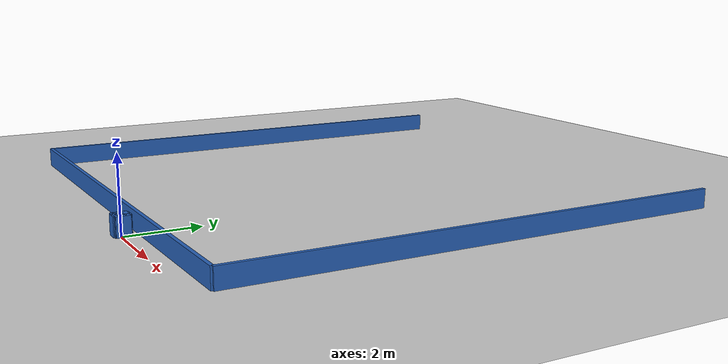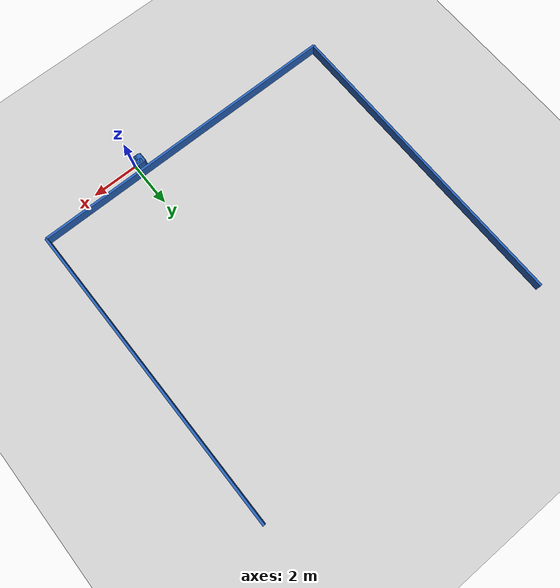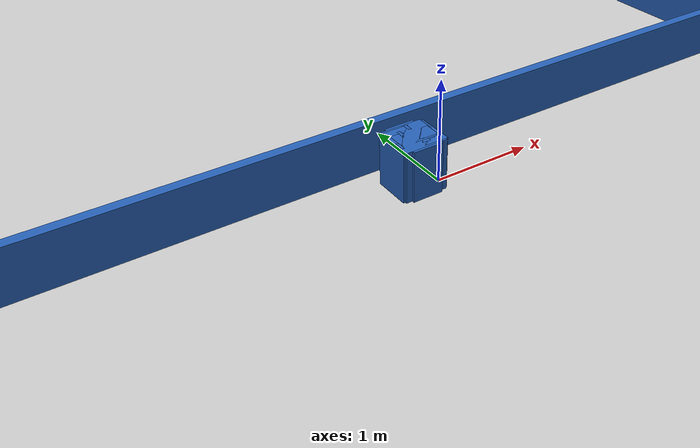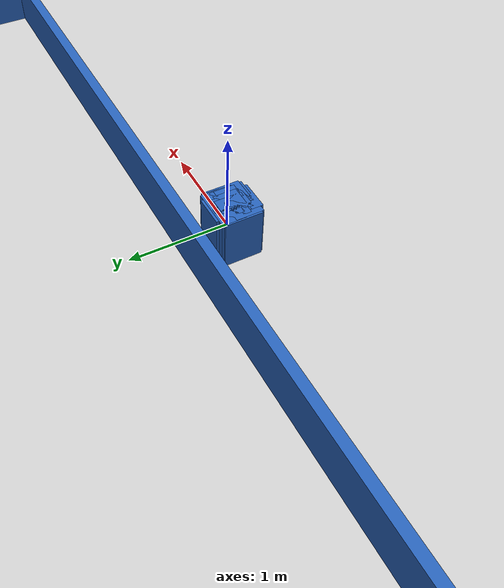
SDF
<?xml version="1.0" ?>
    <sdf version="1.5">
      <world name="default">
        <!-- A global light source -->
        <include>
          <uri>model://sun</uri>
        </include>
        <!-- A ground plane -->
        <include>
          <uri>model://ground_plane</uri>
        </include>

    <model name='libopen_space_final_T2B_125_67'>
      <static>1</static>
      <pose frame=''>-0.225000 0.075000 0.000000 0.000000 0.000000 0.000000</pose>
      <link name='link'>
        <inertial>
          <mass>1</mass>
          <inertia>
            <ixx>0.145833</ixx>
            <ixy>0</ixy>
            <ixz>0</ixz>
            <iyy>0.145833</iyy>
            <iyz>0</iyz>
            <izz>0.125</izz>
          </inertia>
        </inertial>
        <collision name='collision'>
          <geometry>
            <box>
              <size>0.46 0.37 1</size>
            </box>
          </geometry>
          <max_contacts>10</max_contacts>
          <surface>
            <contact>
              <ode/>
            </contact>
            <bounce/>
            <friction>
              <torsional>
                <ode/>
              </torsional>
              <ode/>
            </friction>
          </surface>
        </collision>
        <visual name='visual'>
          <geometry>
            <box>
              <size>0.46 0.37 1</size>
            </box>
          </geometry>
	    <material>
              <ambient>0.152000 0.379000 0.720000 1</ambient>
	      <diffuse>0.152000 0.379000 0.720000 1</diffuse>
          </material>
          <material>
            <script>
              <name>Gazebo/Grey</name>
              <uri>file://media/materials/scripts/gazebo.material</uri>
            </script>
          </material>
        </visual>
        <self_collide>0</self_collide>
        <kinematic>0</kinematic>
        <gravity>1</gravity>
      </link>
      <plugin name='libopen_space_final_T2B_125_67' filename='libopen_space_final_T2B_125_67.so'/>
    </model>

    <model name='libopen_space_final_T2B_125_59'>
      <static>1</static>
      <pose frame=''>-0.225000 0.075000 0.000000 0.000000 0.000000 0.000000</pose>
      <link name='link'>
        <inertial>
          <mass>1</mass>
          <inertia>
            <ixx>0.145833</ixx>
            <ixy>0</ixy>
            <ixz>0</ixz>
            <iyy>0.145833</iyy>
            <iyz>0</iyz>
            <izz>0.125</izz>
          </inertia>
        </inertial>
        <collision name='collision'>
          <geometry>
            <box>
              <size>0.40 0.16 1</size>
            </box>
          </geometry>
          <max_contacts>10</max_contacts>
          <surface>
            <contact>
              <ode/>
            </contact>
            <bounce/>
            <friction>
              <torsional>
                <ode/>
              </torsional>
              <ode/>
            </friction>
          </surface>
        </collision>
        <visual name='visual'>
          <geometry>
            <box>
              <size>0.40 0.16 1</size>
            </box>
          </geometry>
	    <material>
              <ambient>0.152000 0.379000 0.720000 1</ambient>
	      <diffuse>0.152000 0.379000 0.720000 1</diffuse>
          </material>
          <material>
            <script>
              <name>Gazebo/Grey</name>
              <uri>file://media/materials/scripts/gazebo.material</uri>
            </script>
          </material>
        </visual>
        <self_collide>0</self_collide>
        <kinematic>0</kinematic>
        <gravity>1</gravity>
      </link>
      <plugin name='libopen_space_final_T2B_125_59' filename='libopen_space_final_T2B_125_59.so'/>
    </model>

    <model name='libopen_space_final_T2B_118_50'>
      <static>1</static>
      <pose frame=''>-0.225000 0.075000 0.000000 0.000000 0.000000 0.000000</pose>
      <link name='link'>
        <inertial>
          <mass>1</mass>
          <inertia>
            <ixx>0.145833</ixx>
            <ixy>0</ixy>
            <ixz>0</ixz>
            <iyy>0.145833</iyy>
            <iyz>0</iyz>
            <izz>0.125</izz>
          </inertia>
        </inertial>
        <collision name='collision'>
          <geometry>
            <box>
              <size>0.40 0.25 1</size>
            </box>
          </geometry>
          <max_contacts>10</max_contacts>
          <surface>
            <contact>
              <ode/>
            </contact>
            <bounce/>
            <friction>
              <torsional>
                <ode/>
              </torsional>
              <ode/>
            </friction>
          </surface>
        </collision>
        <visual name='visual'>
          <geometry>
            <box>
              <size>0.40 0.25 1</size>
            </box>
          </geometry>
	    <material>
              <ambient>0.152000 0.379000 0.720000 1</ambient>
	      <diffuse>0.152000 0.379000 0.720000 1</diffuse>
          </material>
          <material>
            <script>
              <name>Gazebo/Grey</name>
              <uri>file://media/materials/scripts/gazebo.material</uri>
            </script>
          </material>
        </visual>
        <self_collide>0</self_collide>
        <kinematic>0</kinematic>
        <gravity>1</gravity>
      </link>
      <plugin name='libopen_space_final_T2B_118_50' filename='libopen_space_final_T2B_118_50.so'/>
    </model>

    <model name='libopen_space_final_T2B_103_85'>
      <static>1</static>
      <pose frame=''>-0.225000 0.075000 0.000000 0.000000 0.000000 0.000000</pose>
      <link name='link'>
        <inertial>
          <mass>1</mass>
          <inertia>
            <ixx>0.145833</ixx>
            <ixy>0</ixy>
            <ixz>0</ixz>
            <iyy>0.145833</iyy>
            <iyz>0</iyz>
            <izz>0.125</izz>
          </inertia>
        </inertial>
        <collision name='collision'>
          <geometry>
            <box>
              <size>0.23 0.31 1</size>
            </box>
          </geometry>
          <max_contacts>10</max_contacts>
          <surface>
            <contact>
              <ode/>
            </contact>
            <bounce/>
            <friction>
              <torsional>
                <ode/>
              </torsional>
              <ode/>
            </friction>
          </surface>
        </collision>
        <visual name='visual'>
          <geometry>
            <box>
              <size>0.23 0.31 1</size>
            </box>
          </geometry>
	    <material>
              <ambient>0.152000 0.379000 0.720000 1</ambient>
	      <diffuse>0.152000 0.379000 0.720000 1</diffuse>
          </material>
          <material>
            <script>
              <name>Gazebo/Grey</name>
              <uri>file://media/materials/scripts/gazebo.material</uri>
            </script>
          </material>
        </visual>
        <self_collide>0</self_collide>
        <kinematic>0</kinematic>
        <gravity>1</gravity>
      </link>
      <plugin name='libopen_space_final_T2B_103_85' filename='libopen_space_final_T2B_103_85.so'/>
    </model>

    <model name='libopen_space_final_T2B_91_57'>
      <static>1</static>
      <pose frame=''>-0.225000 0.075000 0.000000 0.000000 0.000000 0.000000</pose>
      <link name='link'>
        <inertial>
          <mass>1</mass>
          <inertia>
            <ixx>0.145833</ixx>
            <ixy>0</ixy>
            <ixz>0</ixz>
            <iyy>0.145833</iyy>
            <iyz>0</iyz>
            <izz>0.125</izz>
          </inertia>
        </inertial>
        <collision name='collision'>
          <geometry>
            <box>
              <size>0.30 0.46 1</size>
            </box>
          </geometry>
          <max_contacts>10</max_contacts>
          <surface>
            <contact>
              <ode/>
            </contact>
            <bounce/>
            <friction>
              <torsional>
                <ode/>
              </torsional>
              <ode/>
            </friction>
          </surface>
        </collision>
        <visual name='visual'>
          <geometry>
            <box>
              <size>0.30 0.46 1</size>
            </box>
          </geometry>
	    <material>
              <ambient>0.152000 0.379000 0.720000 1</ambient>
	      <diffuse>0.152000 0.379000 0.720000 1</diffuse>
          </material>
          <material>
            <script>
              <name>Gazebo/Grey</name>
              <uri>file://media/materials/scripts/gazebo.material</uri>
            </script>
          </material>
        </visual>
        <self_collide>0</self_collide>
        <kinematic>0</kinematic>
        <gravity>1</gravity>
      </link>
      <plugin name='libopen_space_final_T2B_91_57' filename='libopen_space_final_T2B_91_57.so'/>
    </model>

    <model name='libopen_space_final_T2B_51_63'>
      <static>1</static>
      <pose frame=''>-0.225000 0.075000 0.000000 0.000000 0.000000 0.000000</pose>
      <link name='link'>
        <inertial>
          <mass>1</mass>
          <inertia>
            <ixx>0.145833</ixx>
            <ixy>0</ixy>
            <ixz>0</ixz>
            <iyy>0.145833</iyy>
            <iyz>0</iyz>
            <izz>0.125</izz>
          </inertia>
        </inertial>
        <collision name='collision'>
          <geometry>
            <box>
              <size>0.11 0.38 1</size>
            </box>
          </geometry>
          <max_contacts>10</max_contacts>
          <surface>
            <contact>
              <ode/>
            </contact>
            <bounce/>
            <friction>
              <torsional>
                <ode/>
              </torsional>
              <ode/>
            </friction>
          </surface>
        </collision>
        <visual name='visual'>
          <geometry>
            <box>
              <size>0.11 0.38 1</size>
            </box>
          </geometry>
	    <material>
              <ambient>0.152000 0.379000 0.720000 1</ambient>
	      <diffuse>0.152000 0.379000 0.720000 1</diffuse>
          </material>
          <material>
            <script>
              <name>Gazebo/Grey</name>
              <uri>file://media/materials/scripts/gazebo.material</uri>
            </script>
          </material>
        </visual>
        <self_collide>0</self_collide>
        <kinematic>0</kinematic>
        <gravity>1</gravity>
      </link>
      <plugin name='libopen_space_final_T2B_51_63' filename='libopen_space_final_T2B_51_63.so'/>
    </model>

    <model name='libopen_space_final_T2B_119_99'>
      <static>1</static>
      <pose frame=''>-0.225000 0.075000 0.000000 0.000000 0.000000 0.000000</pose>
      <link name='link'>
        <inertial>
          <mass>1</mass>
          <inertia>
            <ixx>0.145833</ixx>
            <ixy>0</ixy>
            <ixz>0</ixz>
            <iyy>0.145833</iyy>
            <iyz>0</iyz>
            <izz>0.125</izz>
          </inertia>
        </inertial>
        <collision name='collision'>
          <geometry>
            <box>
              <size>0.42 0.41 1</size>
            </box>
          </geometry>
          <max_contacts>10</max_contacts>
          <surface>
            <contact>
              <ode/>
            </contact>
            <bounce/>
            <friction>
              <torsional>
                <ode/>
              </torsional>
              <ode/>
            </friction>
          </surface>
        </collision>
        <visual name='visual'>
          <geometry>
            <box>
              <size>0.42 0.41 1</size>
            </box>
          </geometry>
	    <material>
              <ambient>0.152000 0.379000 0.720000 1</ambient>
	      <diffuse>0.152000 0.379000 0.720000 1</diffuse>
          </material>
          <material>
            <script>
              <name>Gazebo/Grey</name>
              <uri>file://media/materials/scripts/gazebo.material</uri>
            </script>
          </material>
        </visual>
        <self_collide>0</self_collide>
        <kinematic>0</kinematic>
        <gravity>1</gravity>
      </link>
      <plugin name='libopen_space_final_T2B_119_99' filename='libopen_space_final_T2B_119_99.so'/>
    </model>

    <model name='libopen_space_final_T2B_116_74'>
      <static>1</static>
      <pose frame=''>-0.225000 0.075000 0.000000 0.000000 0.000000 0.000000</pose>
      <link name='link'>
        <inertial>
          <mass>1</mass>
          <inertia>
            <ixx>0.145833</ixx>
            <ixy>0</ixy>
            <ixz>0</ixz>
            <iyy>0.145833</iyy>
            <iyz>0</iyz>
            <izz>0.125</izz>
          </inertia>
        </inertial>
        <collision name='collision'>
          <geometry>
            <box>
              <size>0.17 0.27 1</size>
            </box>
          </geometry>
          <max_contacts>10</max_contacts>
          <surface>
            <contact>
              <ode/>
            </contact>
            <bounce/>
            <friction>
              <torsional>
                <ode/>
              </torsional>
              <ode/>
            </friction>
          </surface>
        </collision>
        <visual name='visual'>
          <geometry>
            <box>
              <size>0.17 0.27 1</size>
            </box>
          </geometry>
	    <material>
              <ambient>0.152000 0.379000 0.720000 1</ambient>
	      <diffuse>0.152000 0.379000 0.720000 1</diffuse>
          </material>
          <material>
            <script>
              <name>Gazebo/Grey</name>
              <uri>file://media/materials/scripts/gazebo.material</uri>
            </script>
          </material>
        </visual>
        <self_collide>0</self_collide>
        <kinematic>0</kinematic>
        <gravity>1</gravity>
      </link>
      <plugin name='libopen_space_final_T2B_116_74' filename='libopen_space_final_T2B_116_74.so'/>
    </model>

    <model name='libopen_space_final_T2B_55_44'>
      <static>1</static>
      <pose frame=''>-0.225000 0.075000 0.000000 0.000000 0.000000 0.000000</pose>
      <link name='link'>
        <inertial>
          <mass>1</mass>
          <inertia>
            <ixx>0.145833</ixx>
            <ixy>0</ixy>
            <ixz>0</ixz>
            <iyy>0.145833</iyy>
            <iyz>0</iyz>
            <izz>0.125</izz>
          </inertia>
        </inertial>
        <collision name='collision'>
          <geometry>
            <box>
              <size>0.43 0.31 1</size>
            </box>
          </geometry>
          <max_contacts>10</max_contacts>
          <surface>
            <contact>
              <ode/>
            </contact>
            <bounce/>
            <friction>
              <torsional>
                <ode/>
              </torsional>
              <ode/>
            </friction>
          </surface>
        </collision>
        <visual name='visual'>
          <geometry>
            <box>
              <size>0.43 0.31 1</size>
            </box>
          </geometry>
	    <material>
              <ambient>0.152000 0.379000 0.720000 1</ambient>
	      <diffuse>0.152000 0.379000 0.720000 1</diffuse>
          </material>
          <material>
            <script>
              <name>Gazebo/Grey</name>
              <uri>file://media/materials/scripts/gazebo.material</uri>
            </script>
          </material>
        </visual>
        <self_collide>0</self_collide>
        <kinematic>0</kinematic>
        <gravity>1</gravity>
      </link>
      <plugin name='libopen_space_final_T2B_55_44' filename='libopen_space_final_T2B_55_44.so'/>
    </model>

    <model name='libopen_space_final_T2B_125_48'>
      <static>1</static>
      <pose frame=''>-0.225000 0.075000 0.000000 0.000000 0.000000 0.000000</pose>
      <link name='link'>
        <inertial>
          <mass>1</mass>
          <inertia>
            <ixx>0.145833</ixx>
            <ixy>0</ixy>
            <ixz>0</ixz>
            <iyy>0.145833</iyy>
            <iyz>0</iyz>
            <izz>0.125</izz>
          </inertia>
        </inertial>
        <collision name='collision'>
          <geometry>
            <box>
              <size>0.29 0.23 1</size>
            </box>
          </geometry>
          <max_contacts>10</max_contacts>
          <surface>
            <contact>
              <ode/>
            </contact>
            <bounce/>
            <friction>
              <torsional>
                <ode/>
              </torsional>
              <ode/>
            </friction>
          </surface>
        </collision>
        <visual name='visual'>
          <geometry>
            <box>
              <size>0.29 0.23 1</size>
            </box>
          </geometry>
	    <material>
              <ambient>0.152000 0.379000 0.720000 1</ambient>
	      <diffuse>0.152000 0.379000 0.720000 1</diffuse>
          </material>
          <material>
            <script>
              <name>Gazebo/Grey</name>
              <uri>file://media/materials/scripts/gazebo.material</uri>
            </script>
          </material>
        </visual>
        <self_collide>0</self_collide>
        <kinematic>0</kinematic>
        <gravity>1</gravity>
      </link>
      <plugin name='libopen_space_final_T2B_125_48' filename='libopen_space_final_T2B_125_48.so'/>
    </model>

    <model name='libopen_space_final_T2B_64_52'>
      <static>1</static>
      <pose frame=''>-0.225000 0.075000 0.000000 0.000000 0.000000 0.000000</pose>
      <link name='link'>
        <inertial>
          <mass>1</mass>
          <inertia>
            <ixx>0.145833</ixx>
            <ixy>0</ixy>
            <ixz>0</ixz>
            <iyy>0.145833</iyy>
            <iyz>0</iyz>
            <izz>0.125</izz>
          </inertia>
        </inertial>
        <collision name='collision'>
          <geometry>
            <box>
              <size>0.35 0.20 1</size>
            </box>
          </geometry>
          <max_contacts>10</max_contacts>
          <surface>
            <contact>
              <ode/>
            </contact>
            <bounce/>
            <friction>
              <torsional>
                <ode/>
              </torsional>
              <ode/>
            </friction>
          </surface>
        </collision>
        <visual name='visual'>
          <geometry>
            <box>
              <size>0.35 0.20 1</size>
            </box>
          </geometry>
	    <material>
              <ambient>0.152000 0.379000 0.720000 1</ambient>
	      <diffuse>0.152000 0.379000 0.720000 1</diffuse>
          </material>
          <material>
            <script>
              <name>Gazebo/Grey</name>
              <uri>file://media/materials/scripts/gazebo.material</uri>
            </script>
          </material>
        </visual>
        <self_collide>0</self_collide>
        <kinematic>0</kinematic>
        <gravity>1</gravity>
      </link>
      <plugin name='libopen_space_final_T2B_64_52' filename='libopen_space_final_T2B_64_52.so'/>
    </model>

        <model name='bottom_wall'>
          <static>1</static>
          <pose frame=''>-2.25 0.5 0.000000 0.000000 0.000000 1.57079632</pose>
          <link name='link'>
            <inertial>
            <mass>1</mass>
            <inertia>
              <ixx>0.145833</ixx>
              <ixy>0</ixy>
              <ixz>0</ixz>
              <iyy>0.145833</iyy>
              <iyz>0</iyz>
              <izz>0.125</izz>
            </inertia>
            </inertial>
            <collision name='collision'>
            <geometry>
              <box>
              <size>0.1 13.5 1</size>
              </box>
            </geometry>
            <max_contacts>10</max_contacts>
            <surface>
              <contact>
              <ode/>
              </contact>
              <bounce/>
              <friction>
              <torsional>
                <ode/>
              </torsional>
              <ode/>
              </friction>
            </surface>
            </collision>
            <visual name='visual'>
            <geometry>
              <box>
              <size>0.1 13.5 1</size>
              </box>
            </geometry>
            <material>
              <ambient>0.152000 0.379000 0.720000 1</ambient>
            <diffuse>0.152000 0.379000 0.720000 1</diffuse>
            </material>
            <material>
              <script>
              <name>Gazebo/Grey</name>
              <uri>file://media/materials/scripts/gazebo.material</uri>
              </script>
            </material>
            </visual>
            <self_collide>0</self_collide>
            <kinematic>0</kinematic>
            <gravity>1</gravity>
          </link>
        </model>

        <model name='left_wall'>
          <static>1</static>
          <pose frame=''>-9 7.25 0.000000 0.000000 0.000000 0.000000</pose>
          <link name='link'>
            <inertial>
            <mass>1</mass>
            <inertia>
              <ixx>0.145833</ixx>
              <ixy>0</ixy>
              <ixz>0</ixz>
              <iyy>0.145833</iyy>
              <iyz>0</iyz>
              <izz>0.125</izz>
            </inertia>
            </inertial>
            <collision name='collision'>
            <geometry>
              <box>
              <size>0.1 13.5 1</size>
              </box>
            </geometry>
            <max_contacts>10</max_contacts>
            <surface>
              <contact>
              <ode/>
              </contact>
              <bounce/>
              <friction>
              <torsional>
                <ode/>
              </torsional>
              <ode/>
              </friction>
            </surface>
            </collision>
            <visual name='visual'>
            <geometry>
              <box>
              <size>0.1 13.5 1</size>
              </box>
            </geometry>
            <material>
              <ambient>0.152000 0.379000 0.720000 1</ambient>
            <diffuse>0.152000 0.379000 0.720000 1</diffuse>
            </material>
            <material>
              <script>
              <name>Gazebo/Grey</name>
              <uri>file://media/materials/scripts/gazebo.material</uri>
              </script>
            </material>
            </visual>
            <self_collide>0</self_collide>
            <kinematic>0</kinematic>
            <gravity>1</gravity>
          </link>
        </model>

        <model name='right_wall'>
          <static>1</static>
          <pose frame=''>4.5 7.25 0.000000 0.000000 0.000000 0.000000</pose>
          <link name='link'>
            <inertial>
            <mass>1</mass>
            <inertia>
              <ixx>0.145833</ixx>
              <ixy>0</ixy>
              <ixz>0</ixz>
              <iyy>0.145833</iyy>
              <iyz>0</iyz>
              <izz>0.125</izz>
            </inertia>
            </inertial>
            <collision name='collision'>
            <geometry>
              <box>
              <size>0.1 13.5 1</size>
              </box>
            </geometry>
            <max_contacts>10</max_contacts>
            <surface>
              <contact>
              <ode/>
              </contact>
              <bounce/>
              <friction>
              <torsional>
                <ode/>
              </torsional>
              <ode/>
              </friction>
            </surface>
            </collision>
            <visual name='visual'>
            <geometry>
              <box>
              <size>0.1 13.5 1</size>
              </box>
            </geometry>
            <material>
              <ambient>0.152000 0.379000 0.720000 1</ambient>
            <diffuse>0.152000 0.379000 0.720000 1</diffuse>
            </material>
            <material>
              <script>
              <name>Gazebo/Grey</name>
              <uri>file://media/materials/scripts/gazebo.material</uri>
              </script>
            </material>
            </visual>
            <self_collide>0</self_collide>
            <kinematic>0</kinematic>
            <gravity>1</gravity>
          </link>
        </model>

      </world>
    </sdf>"
